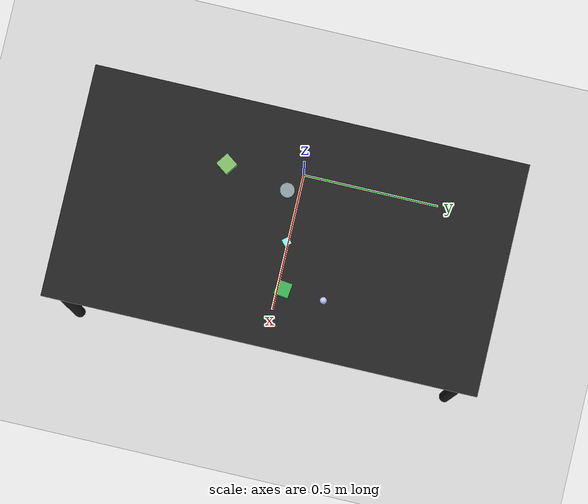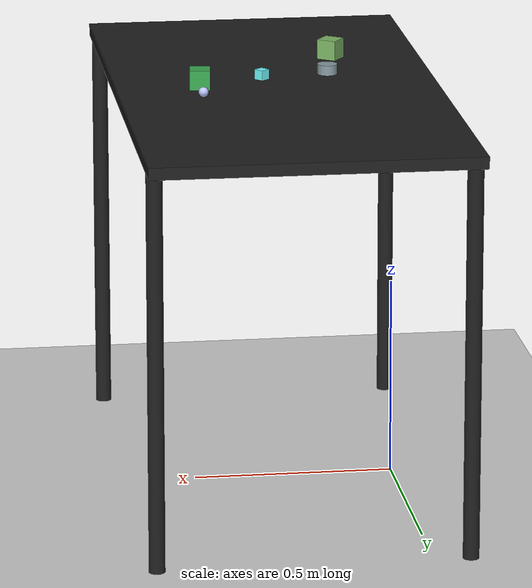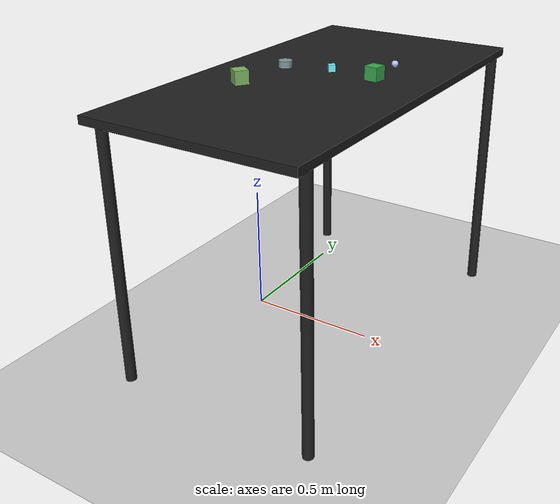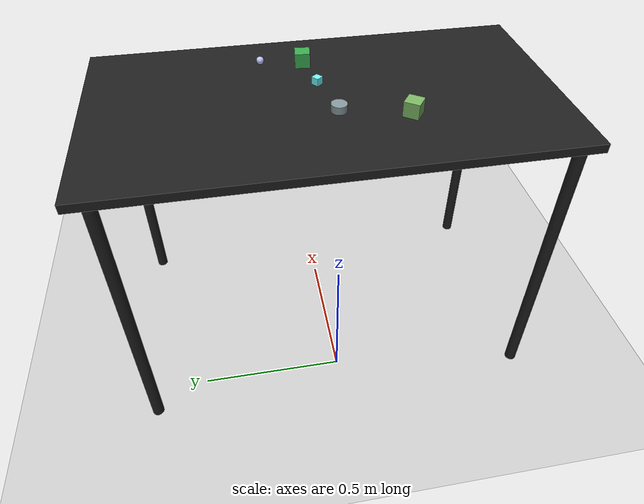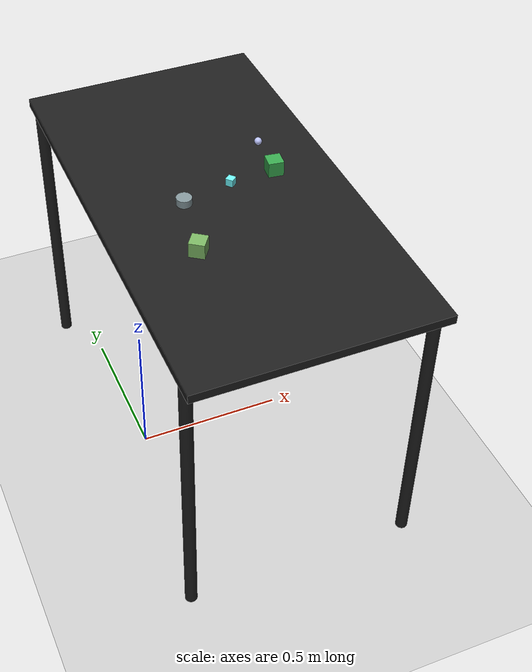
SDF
<?xml version="1.0" ?>
<sdf version="1.6">
  <world name="arm_world">
    <plugin filename="gz-sim-physics-system" name="gz::sim::systems::Physics">
      <engine>
        <filename>libgz-physics-bullet-featherstone-plugin.so</filename>
      </engine>
    </plugin>
    <plugin filename="gz-sim-user-commands-system" name="gz::sim::systems::UserCommands"/>
    <plugin filename="gz-sim-scene-broadcaster-system" name="gz::sim::systems::SceneBroadcaster"/>
    <plugin filename="gz-sim-sensors-system" name="gz::sim::systems::Sensors">
      <render_engine>ogre2</render_engine>
    </plugin>
    <gravity>0.0 0.0 -9.8</gravity>
    <scene>
      <shadows>false</shadows>
    </scene>
    <gui>
      <camera name="user_camera">
        <pose>0.75 -0.75 1.4 0 0.29 2.21</pose>
      </camera>
    </gui>
    <include>
      <uri>https://fuel.gazebosim.org/1.0/OpenRobotics/models/Sun</uri>
    </include>
    <model name="table">
      <static>true</static>
      <include>
        <uri>model://table</uri>
      </include>
      <pose>0.29 0 0 0 0 1.5708</pose>
    </model>
    <model name="ground_plane">
      <static>true</static>
      <link name="link">
        <collision name="collision">
          <geometry>
            <plane>
              <normal>0 0 1</normal>
            </plane>
          </geometry>
          <surface>
            <friction>
              <ode>
                <mu>1.0</mu>
                <mu2>1.0</mu2>
              </ode>
            </friction>
          </surface>
        </collision>
        <visual name="visual">
          <geometry>
            <plane>
              <normal>0 0 1</normal>
              <size>100 100</size>
            </plane>
          </geometry>
          <material>
            <ambient>0.8 0.8 0.8 1</ambient>
            <diffuse>0.8 0.8 0.8 1</diffuse>
            <specular>0.8 0.8 0.8 1</specular>
          </material>
        </visual>
      </link>
    </model>
    <model name="sphere_s_0">
      <pose>0.495 0.177 1.05 0 0 5.83</pose>
      <link name="sphere_s_0_link">
        <collision name="sphere_s_0_collision">
          <geometry>
            <sphere>
              <radius>0.0125</radius>
            </sphere>
          </geometry>
        </collision>
        <visual name="sphere_s_0_visual">
          <geometry>
            <sphere>
              <radius>0.0125</radius>
            </sphere>
          </geometry>
          <material>
            <ambient>0.73 0.76 0.97 1</ambient>
            <diffuse>0.73 0.76 0.97 1</diffuse>
          </material>
        </visual>
        <velocity_decay>
          <linear>1</linear>
          <angular>1</angular>
        </velocity_decay>
      </link>
    </model>
    <model name="cylinder_m_1">
      <pose>0.162 -0.024 1.05 0 0 2.32</pose>
      <link name="cylinder_m_1_link">
        <collision name="cylinder_m_1_collision">
          <geometry>
            <cylinder>
              <radius>0.025</radius>
              <length>0.025</length>
            </cylinder>
          </geometry>
        </collision>
        <visual name="cylinder_m_1_visual">
          <geometry>
            <cylinder>
              <radius>0.025</radius>
              <length>0.025</length>
            </cylinder>
          </geometry>
          <material>
            <ambient>0.52 0.59 0.61 1</ambient>
            <diffuse>0.52 0.59 0.61 1</diffuse>
          </material>
        </visual>
        <velocity_decay>
          <linear>1</linear>
          <angular>1</angular>
        </velocity_decay>
      </link>
    </model>
    <model name="cube_s_2">
      <pose>0.331 0.013 1.05 0 0 2.28</pose>
      <link name="cube_s_2_link">
        <collision name="cube_s_2_collision">
          <geometry>
            <box>
              <size>0.025 0.025 0.025</size>
            </box>
          </geometry>
        </collision>
        <visual name="cube_s_2_visual">
          <geometry>
            <box>
              <size>0.025 0.025 0.025</size>
            </box>
          </geometry>
          <material>
            <ambient>0.43 0.97 0.99 1</ambient>
            <diffuse>0.43 0.97 0.99 1</diffuse>
          </material>
        </visual>
        <velocity_decay>
          <linear>1</linear>
          <angular>1</angular>
        </velocity_decay>
      </link>
    </model>
    <model name="cube_m_3">
      <pose>0.123 -0.241 1.05 0 0 0.95</pose>
      <link name="cube_m_3_link">
        <collision name="cube_m_3_collision">
          <geometry>
            <box>
              <size>0.05 0.05 0.05</size>
            </box>
          </geometry>
        </collision>
        <visual name="cube_m_3_visual">
          <geometry>
            <box>
              <size>0.05 0.05 0.05</size>
            </box>
          </geometry>
          <material>
            <ambient>0.48 0.71 0.39 1</ambient>
            <diffuse>0.48 0.71 0.39 1</diffuse>
          </material>
        </visual>
        <velocity_decay>
          <linear>1</linear>
          <angular>1</angular>
        </velocity_decay>
      </link>
    </model>
    <model name="cube_m_4">
      <pose>0.488 0.037 1.05 0 0 4.59</pose>
      <link name="cube_m_4_link">
        <collision name="cube_m_4_collision">
          <geometry>
            <box>
              <size>0.05 0.05 0.05</size>
            </box>
          </geometry>
        </collision>
        <visual name="cube_m_4_visual">
          <geometry>
            <box>
              <size>0.05 0.05 0.05</size>
            </box>
          </geometry>
          <material>
            <ambient>0.22 0.66 0.31 1</ambient>
            <diffuse>0.22 0.66 0.31 1</diffuse>
          </material>
        </visual>
        <velocity_decay>
          <linear>1</linear>
          <angular>1</angular>
        </velocity_decay>
      </link>
    </model>
  </world>
</sdf>

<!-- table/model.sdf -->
<sdf version="1.5">
  <model name="table">
    <static>true</static>
    <link name="link">
      <collision name="surface">
        <pose>0 0 1.0 0 0 0</pose>
        <geometry>
          <box>
            <size>1.5 0.8 0.03</size>
          </box>
        </geometry>
        <surface>
          <friction>
            <ode>
              <mu>0.6</mu>
              <mu2>0.6</mu2>
            </ode>
          </friction>
        </surface>
      </collision>
      <visual name="surface">
        <pose>0 0 1.0 0 0 0</pose>
        <geometry>
          <box>
            <size>1.5 0.8 0.03</size>
          </box>
        </geometry>
        <material>
          <script>
            <uri>file://media/materials/scripts/gazebo.material</uri>
            <name>Gazebo/Black</name>
          </script>
        </material>
      </visual>
      <collision name="front_left_leg">
        <pose>0.68 0.38 0.5 0 0 0</pose>
        <geometry>
          <cylinder>
            <radius>0.02</radius>
            <length>1.0</length>
          </cylinder>
        </geometry>
      </collision>
      <visual name="front_left_leg">
        <pose>0.68 0.38 0.5 0 0 0</pose>
        <geometry>
          <cylinder>
            <radius>0.02</radius>
            <length>1.0</length>
          </cylinder>
        </geometry>
        <material>
          <script>
            <uri>file://media/materials/scripts/gazebo.material</uri>
            <name>Gazebo/Black</name>
          </script>
        </material>
      </visual>
      <collision name="front_right_leg">
        <pose>0.68 -0.38 0.5 0 0 0</pose>
        <geometry>
          <cylinder>
            <radius>0.02</radius>
            <length>1.0</length>
          </cylinder>
        </geometry>
      </collision>
      <visual name="front_right_leg">
        <pose>0.68 -0.38 0.5 0 0 0</pose>
        <geometry>
          <cylinder>
            <radius>0.02</radius>
            <length>1.0</length>
          </cylinder>
        </geometry>
        <material>
          <script>
            <uri>file://media/materials/scripts/gazebo.material</uri>
            <name>Gazebo/Black</name>
          </script>
        </material>
      </visual>
      <collision name="back_right_leg">
        <pose>-0.68 -0.38 0.5 0 0 0</pose>
        <geometry>
          <cylinder>
            <radius>0.02</radius>
            <length>1.0</length>
          </cylinder>
        </geometry>
      </collision>
      <visual name="back_right_leg">
        <pose>-0.68 -0.38 0.5 0 0 0</pose>
        <geometry>
          <cylinder>
            <radius>0.02</radius>
            <length>1.0</length>
          </cylinder>
        </geometry>
        <material>
          <script>
            <uri>file://media/materials/scripts/gazebo.material</uri>
            <name>Gazebo/Black</name>
          </script>
        </material>
      </visual>
      <collision name="back_left_leg">
        <pose>-0.68 0.38 0.5 0 0 0</pose>
        <geometry>
          <cylinder>
            <radius>0.02</radius>
            <length>1.0</length>
          </cylinder>
        </geometry>
      </collision>
      <visual name="back_left_leg">
        <pose>-0.68 0.38 0.5 0 0 0</pose>
        <geometry>
          <cylinder>
            <radius>0.02</radius>
            <length>1.0</length>
          </cylinder>
        </geometry>
        <material>
          <script>
            <uri>file://media/materials/scripts/gazebo.material</uri>
            <name>Gazebo/Black</name>
          </script>
        </material>
      </visual>
    </link>
  </model>
</sdf>
